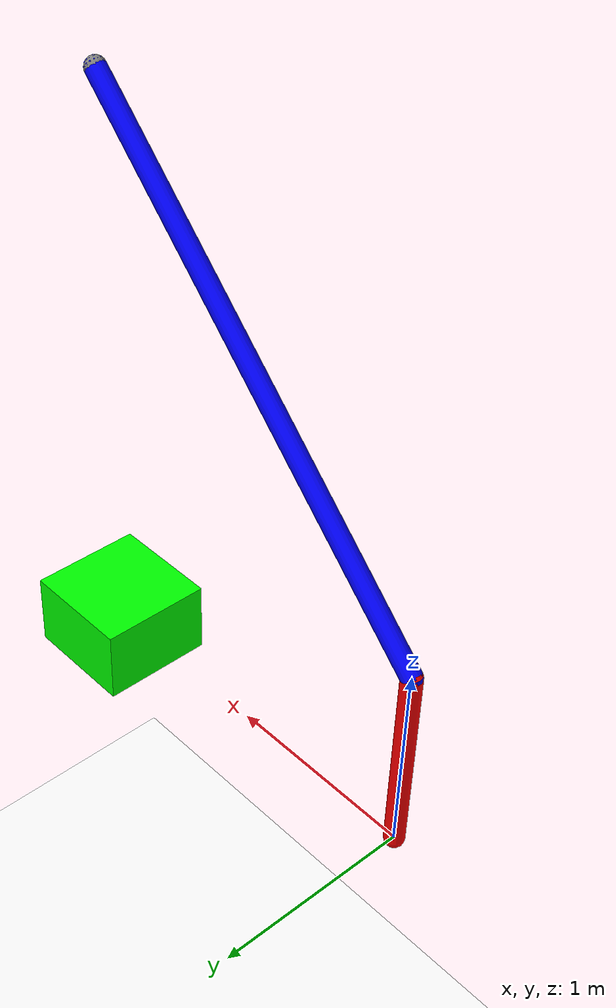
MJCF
<mujoco model="Four-Bar Linkage">

	<worldbody>

		<geom type="plane" pos="0 0 -2" size="0 0 0.1" rgba="1 1 1 1"/>
		<light pos="0 0 20" dir="0 0 -1"/>

		<body name="input">
			<joint name="input_joint" type="hinge" axis="0 1 0"/>
			<geom type="capsule" fromto="0 0 0 0 0 1" size="0.05" rgba="1 0 0 1"/>

			<body>
				<joint type="hinge" pos="0 0 1" axis="0 1 0"/>
				<geom type="capsule" fromto="0 0 1 2 0 3" size="0.05" rgba="0 0 1 1"/>
				<site name="site_coupler" type="sphere" pos="2 0 3" size="0.05"/>

			</body>

		</body>

		<body pos="2 0 0">
			<joint name="output_joint" type="slide" axis="1 0 0"/>
			<geom type="box" pos="0 0 0" size=" 0.3 0.3 0.2" rgba="0 1 0 1"/>
			<site name="site_slider" type="sphere" pos="0 0 0" size="0.05"/>
		</body>

	</worldbody>

	<equality>
		<connect site1="site_coupler" site2="site_slider"/>
	</equality>

	<sensor>
		<jointpos joint="output_joint"/>
	</sensor>

	<actuator>
		<motor joint="input_joint" ctrlrange="-500 +500"/>
	</actuator>

</mujoco>
